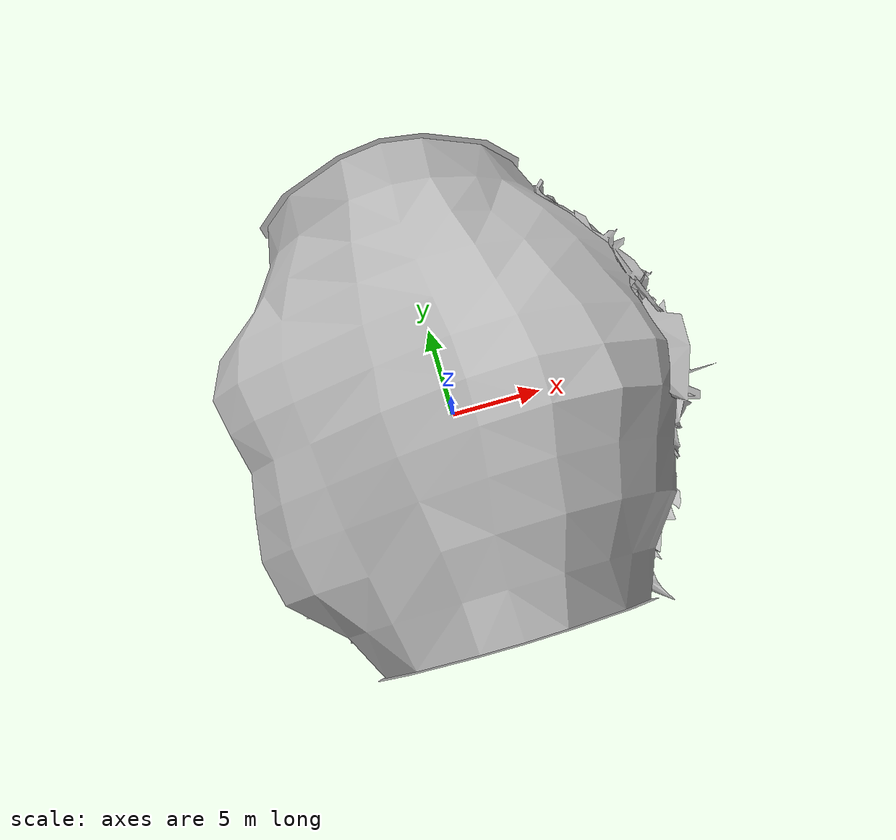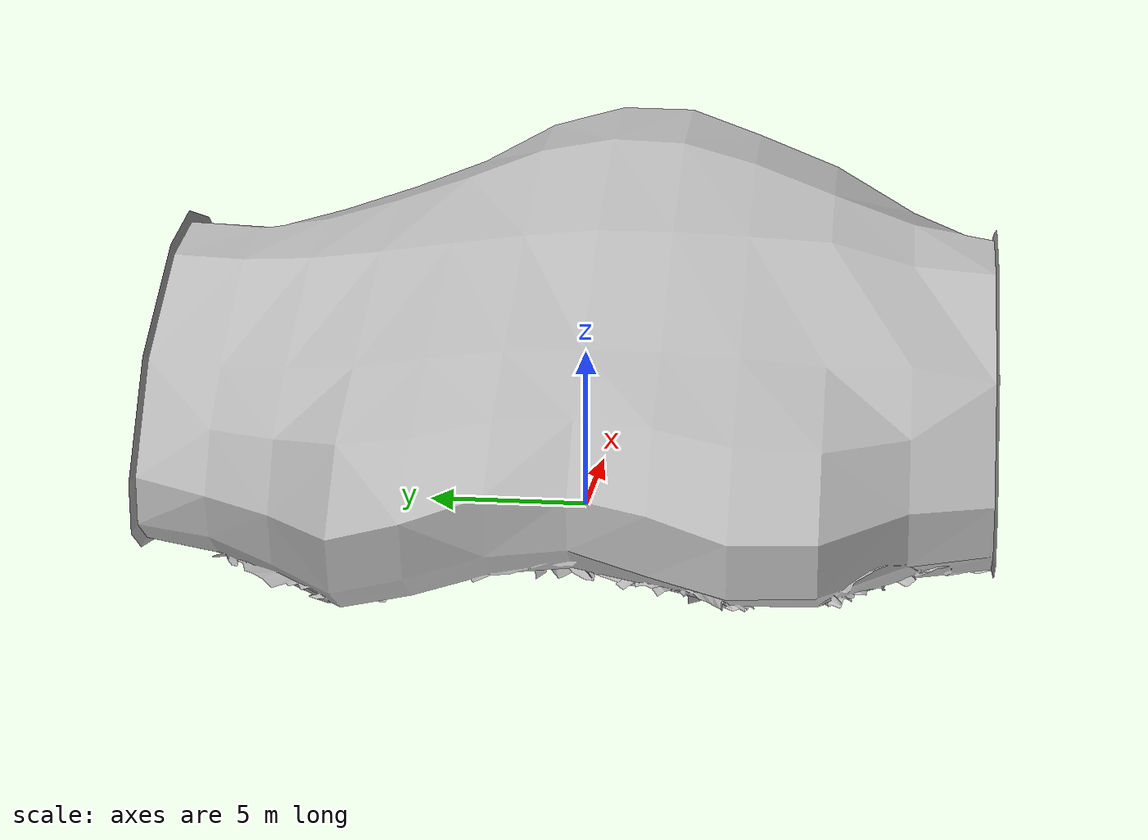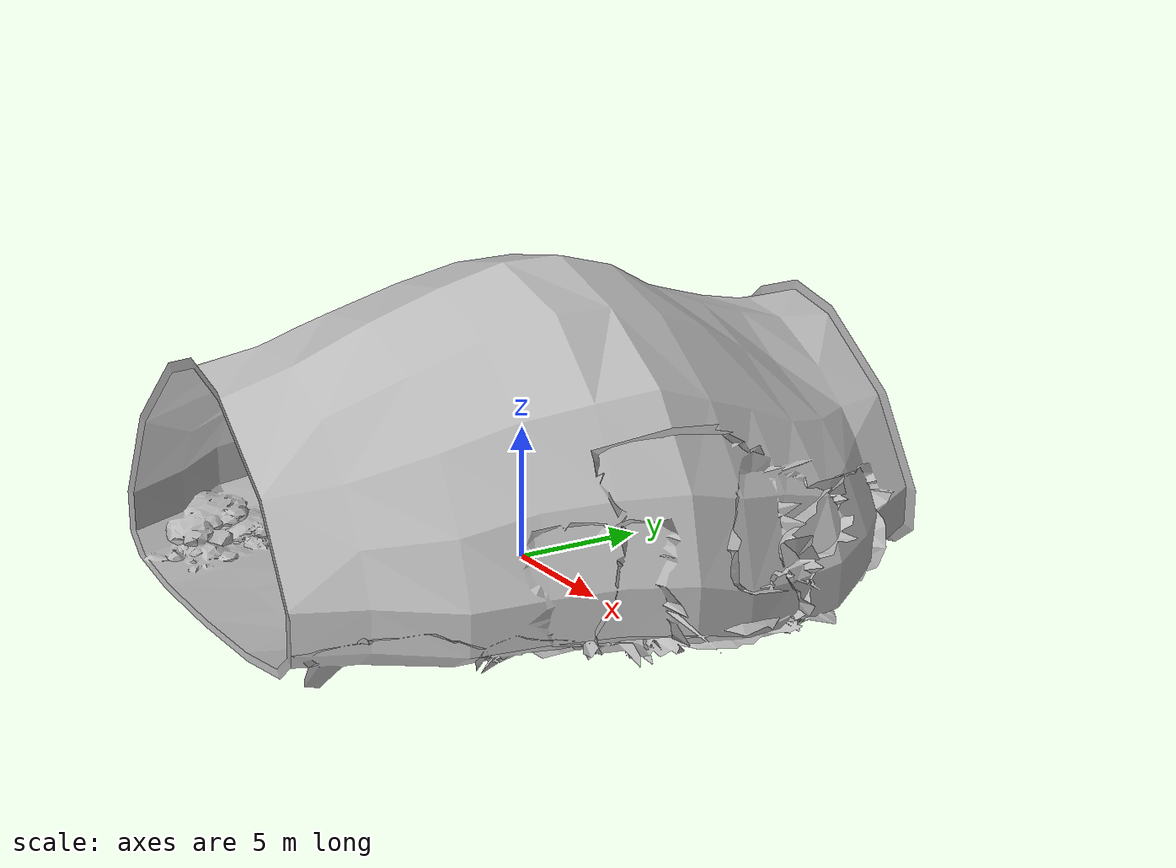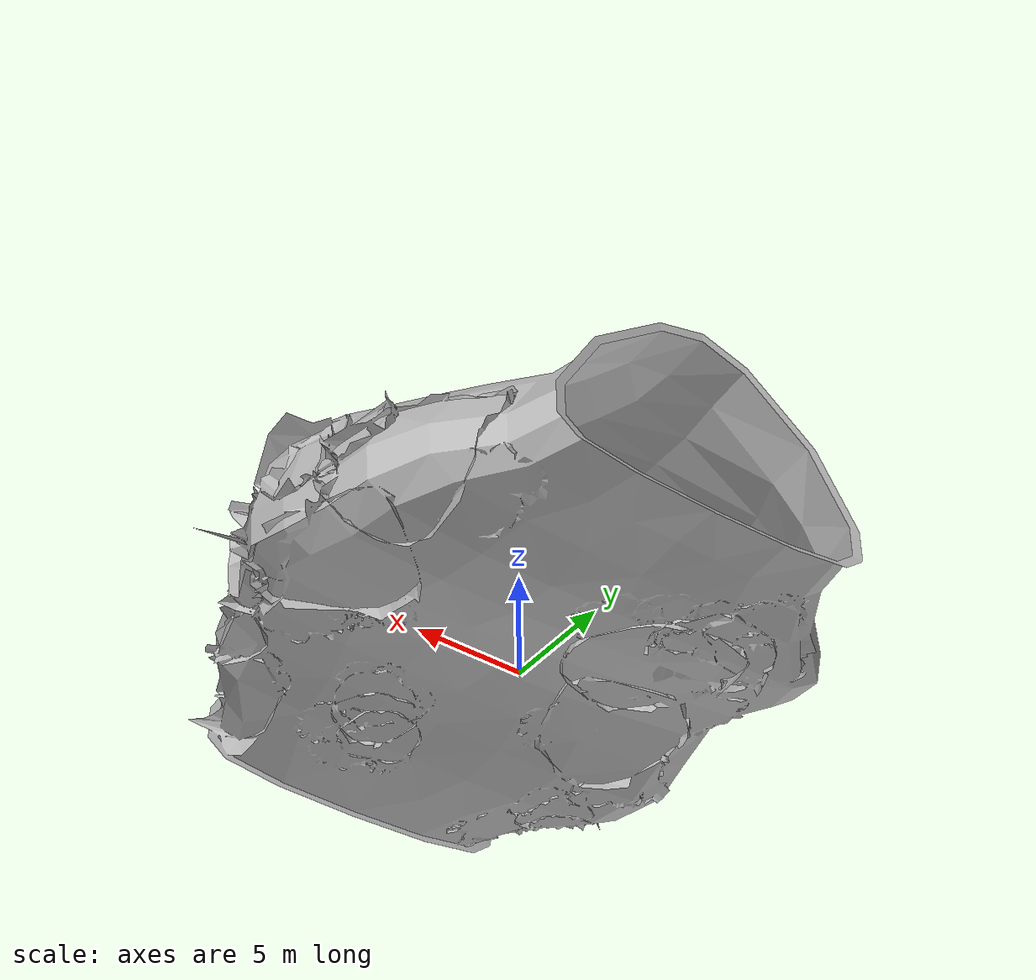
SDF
<?xml version="1.0"?>
<sdf version="1.6">
  <model name="Cave Straight 01">
    <pose>0 0 0 0 0 0</pose>
   <static>true</static>
   <link name="link">
     <collision name="collision">
       <geometry>
         <mesh>
          <uri>model://Cave Straight 01/meshes/cavestraight01.dae</uri>
        </mesh>
       </geometry>
     </collision>
     <visual name="visual">
       <geometry>
         <mesh>
          <uri>model://Cave Straight 01/meshes/cavestraight01.dae</uri>
        </mesh>
       </geometry>
     </visual>
   </link>
 </model>
</sdf>
